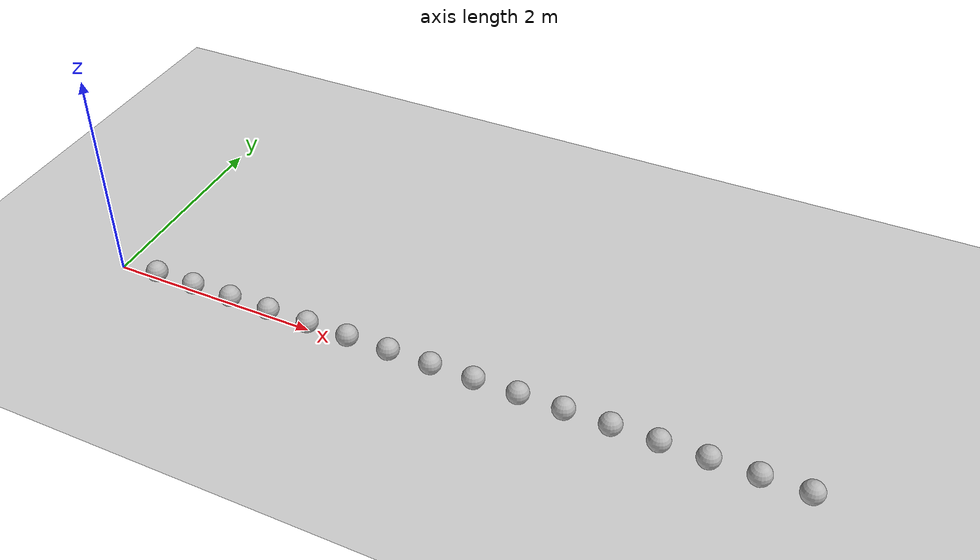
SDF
<?xml version="1.0" ?>

<sdf version="1.5">
  <world name="default">
    <gui>
      <camera name="user_camera">
        <pose>7.5 -3 1.5 0 0.27 2.35</pose>
      </camera>
    </gui>
    <include>
      <uri>model://ground_plane</uri>
    </include>
    <include>
      <uri>model://sun</uri>
    </include>

    <model name='sphere_1'>
      <allow_auto_disable>0</allow_auto_disable>
      <pose>0.4 0 0.1  0 0 0</pose>
      <link name="link">
        <pose>0 0 0 0 0 0</pose>
        <inertial>
          <pose>0 0 0 0 0 0</pose>
          <mass>11.309733552923259</mass>
          <inertia>
            <ixx>0.045238934211693047</ixx>
            <iyy>0.045238934211693047</iyy>
            <izz>0.045238934211693047</izz>
            <ixy>0.0</ixy>
            <ixz>0.0</ixz>
            <iyz>0.0</iyz>
          </inertia>
        </inertial>
        <sensor name='sphere_1_imu' type='imu'>
          <pose>0 0 0 0 0 0</pose>
          <always_on>1</always_on>
        </sensor>
        <collision name="collision">
          <pose>0 0 0 0 0 0</pose>
          <geometry>
            <sphere>
              <radius>0.1</radius>
            </sphere>
          </geometry>
          <surface>
            <contact>
              <ode>
                <kp>500000</kp>
              </ode>
            </contact>
          </surface>
        </collision>
        <visual name="visual">
          <pose>0 0 0 0 0 0</pose>
          <geometry>
            <sphere>
              <radius>0.1</radius>
            </sphere>
          </geometry>
          <material>
            <script>
              <uri>file://media/materials/scripts/gazebo.material</uri>
              <name>Gazebo/CoM</name>
            </script>
          </material>
        </visual>
      </link>
      <plugin name='sphere_1' filename='libInitialVelocityPlugin.so'>
        <linear>0 0 0</linear>
        <angular>0 0 6.283185307179586</angular>
      </plugin>
    </model>

    <model name='sphere_2'>
      <allow_auto_disable>0</allow_auto_disable>
      <pose>0.8 0 0.1  0 0 0</pose>
      <link name="link">
        <pose>-0.1 0 0 0 0 0</pose>
        <inertial>
          <pose>0.1 0 0 0 0 0</pose>
          <mass>11.309733552923259</mass>
          <inertia>
            <ixx>0.045238934211693047</ixx>
            <iyy>0.045238934211693047</iyy>
            <izz>0.045238934211693047</izz>
            <ixy>0.0</ixy>
            <ixz>0.0</ixz>
            <iyz>0.0</iyz>
          </inertia>
        </inertial>
        <sensor name='sphere_2_imu' type='imu'>
          <pose>0.1 0 0 0 0 0</pose>
          <always_on>1</always_on>
        </sensor>
        <collision name="collision">
          <pose>0.1 0 0 0 0 0</pose>
          <geometry>
            <sphere>
              <radius>0.1</radius>
            </sphere>
          </geometry>
          <surface>
            <contact>
              <ode>
                <kp>500000</kp>
              </ode>
            </contact>
          </surface>
        </collision>
        <visual name="visual">
          <pose>0.1 0 0 0 0 0</pose>
          <geometry>
            <sphere>
              <radius>0.1</radius>
            </sphere>
          </geometry>
          <material>
            <script>
              <uri>file://media/materials/scripts/gazebo.material</uri>
              <name>Gazebo/CoM</name>
            </script>
          </material>
        </visual>
      </link>
      <plugin name='sphere_2' filename='libInitialVelocityPlugin.so'>
        <linear>0 0 0</linear>
        <angular>0 0 6.283185307179586</angular>
      </plugin>
    </model>

    <model name='sphere_3'>
      <allow_auto_disable>0</allow_auto_disable>
      <pose>1.2000000000000002 0 0.1  0 0 0</pose>
      <link name="link">
        <pose>0 -0.1 0 0 0 0</pose>
        <inertial>
          <pose>0 0.1 0 0 0 0</pose>
          <mass>11.309733552923259</mass>
          <inertia>
            <ixx>0.045238934211693047</ixx>
            <iyy>0.045238934211693047</iyy>
            <izz>0.045238934211693047</izz>
            <ixy>0.0</ixy>
            <ixz>0.0</ixz>
            <iyz>0.0</iyz>
          </inertia>
        </inertial>
        <sensor name='sphere_3_imu' type='imu'>
          <pose>0 0.1 0 0 0 0</pose>
          <always_on>1</always_on>
        </sensor>
        <collision name="collision">
          <pose>0 0.1 0 0 0 0</pose>
          <geometry>
            <sphere>
              <radius>0.1</radius>
            </sphere>
          </geometry>
          <surface>
            <contact>
              <ode>
                <kp>500000</kp>
              </ode>
            </contact>
          </surface>
        </collision>
        <visual name="visual">
          <pose>0 0.1 0 0 0 0</pose>
          <geometry>
            <sphere>
              <radius>0.1</radius>
            </sphere>
          </geometry>
          <material>
            <script>
              <uri>file://media/materials/scripts/gazebo.material</uri>
              <name>Gazebo/CoM</name>
            </script>
          </material>
        </visual>
      </link>
      <plugin name='sphere_3' filename='libInitialVelocityPlugin.so'>
        <linear>0 0 0</linear>
        <angular>0 0 6.283185307179586</angular>
      </plugin>
    </model>

    <model name='sphere_4'>
      <allow_auto_disable>0</allow_auto_disable>
      <pose>1.6 0 0.1  0 0 0</pose>
      <link name="link">
        <pose>0 0 -0.1 0 0 0</pose>
        <inertial>
          <pose>0 0 0.1 0 0 0</pose>
          <mass>11.309733552923259</mass>
          <inertia>
            <ixx>0.045238934211693047</ixx>
            <iyy>0.045238934211693047</iyy>
            <izz>0.045238934211693047</izz>
            <ixy>0.0</ixy>
            <ixz>0.0</ixz>
            <iyz>0.0</iyz>
          </inertia>
        </inertial>
        <sensor name='sphere_4_imu' type='imu'>
          <pose>0 0 0.1 0 0 0</pose>
          <always_on>1</always_on>
        </sensor>
        <collision name="collision">
          <pose>0 0 0.1 0 0 0</pose>
          <geometry>
            <sphere>
              <radius>0.1</radius>
            </sphere>
          </geometry>
          <surface>
            <contact>
              <ode>
                <kp>500000</kp>
              </ode>
            </contact>
          </surface>
        </collision>
        <visual name="visual">
          <pose>0 0 0.1 0 0 0</pose>
          <geometry>
            <sphere>
              <radius>0.1</radius>
            </sphere>
          </geometry>
          <material>
            <script>
              <uri>file://media/materials/scripts/gazebo.material</uri>
              <name>Gazebo/CoM</name>
            </script>
          </material>
        </visual>
      </link>
      <plugin name='sphere_4' filename='libInitialVelocityPlugin.so'>
        <linear>0 0 0</linear>
        <angular>0 0 6.283185307179586</angular>
      </plugin>
    </model>

    <model name='sphere_5'>
      <allow_auto_disable>0</allow_auto_disable>
      <pose>2.0 0 0.1  0 0 0</pose>
      <link name="link">
        <pose>0.1 0 0 0 0 0</pose>
        <inertial>
          <pose>-0.1 0 0 0 0 0</pose>
          <mass>11.309733552923259</mass>
          <inertia>
            <ixx>0.045238934211693047</ixx>
            <iyy>0.045238934211693047</iyy>
            <izz>0.045238934211693047</izz>
            <ixy>0.0</ixy>
            <ixz>0.0</ixz>
            <iyz>0.0</iyz>
          </inertia>
        </inertial>
        <sensor name='sphere_5_imu' type='imu'>
          <pose>-0.1 0 0 0 0 0</pose>
          <always_on>1</always_on>
        </sensor>
        <collision name="collision">
          <pose>-0.1 0 0 0 0 0</pose>
          <geometry>
            <sphere>
              <radius>0.1</radius>
            </sphere>
          </geometry>
          <surface>
            <contact>
              <ode>
                <kp>500000</kp>
              </ode>
            </contact>
          </surface>
        </collision>
        <visual name="visual">
          <pose>-0.1 0 0 0 0 0</pose>
          <geometry>
            <sphere>
              <radius>0.1</radius>
            </sphere>
          </geometry>
          <material>
            <script>
              <uri>file://media/materials/scripts/gazebo.material</uri>
              <name>Gazebo/CoM</name>
            </script>
          </material>
        </visual>
      </link>
      <plugin name='sphere_5' filename='libInitialVelocityPlugin.so'>
        <linear>0 0 0</linear>
        <angular>0 0 6.283185307179586</angular>
      </plugin>
    </model>

    <model name='sphere_6'>
      <allow_auto_disable>0</allow_auto_disable>
      <pose>2.4000000000000004 0 0.1  0 0 0</pose>
      <link name="link">
        <pose>0 0.1 0 0 0 0</pose>
        <inertial>
          <pose>0 -0.1 0 0 0 0</pose>
          <mass>11.309733552923259</mass>
          <inertia>
            <ixx>0.045238934211693047</ixx>
            <iyy>0.045238934211693047</iyy>
            <izz>0.045238934211693047</izz>
            <ixy>0.0</ixy>
            <ixz>0.0</ixz>
            <iyz>0.0</iyz>
          </inertia>
        </inertial>
        <sensor name='sphere_6_imu' type='imu'>
          <pose>0 -0.1 0 0 0 0</pose>
          <always_on>1</always_on>
        </sensor>
        <collision name="collision">
          <pose>0 -0.1 0 0 0 0</pose>
          <geometry>
            <sphere>
              <radius>0.1</radius>
            </sphere>
          </geometry>
          <surface>
            <contact>
              <ode>
                <kp>500000</kp>
              </ode>
            </contact>
          </surface>
        </collision>
        <visual name="visual">
          <pose>0 -0.1 0 0 0 0</pose>
          <geometry>
            <sphere>
              <radius>0.1</radius>
            </sphere>
          </geometry>
          <material>
            <script>
              <uri>file://media/materials/scripts/gazebo.material</uri>
              <name>Gazebo/CoM</name>
            </script>
          </material>
        </visual>
      </link>
      <plugin name='sphere_6' filename='libInitialVelocityPlugin.so'>
        <linear>0 0 0</linear>
        <angular>0 0 6.283185307179586</angular>
      </plugin>
    </model>

    <model name='sphere_7'>
      <allow_auto_disable>0</allow_auto_disable>
      <pose>2.8000000000000003 0 0.1  0 0 0</pose>
      <link name="link">
        <pose>0 0 0.1 0 0 0</pose>
        <inertial>
          <pose>0 0 -0.1 0 0 0</pose>
          <mass>11.309733552923259</mass>
          <inertia>
            <ixx>0.045238934211693047</ixx>
            <iyy>0.045238934211693047</iyy>
            <izz>0.045238934211693047</izz>
            <ixy>0.0</ixy>
            <ixz>0.0</ixz>
            <iyz>0.0</iyz>
          </inertia>
        </inertial>
        <sensor name='sphere_7_imu' type='imu'>
          <pose>0 0 -0.1 0 0 0</pose>
          <always_on>1</always_on>
        </sensor>
        <collision name="collision">
          <pose>0 0 -0.1 0 0 0</pose>
          <geometry>
            <sphere>
              <radius>0.1</radius>
            </sphere>
          </geometry>
          <surface>
            <contact>
              <ode>
                <kp>500000</kp>
              </ode>
            </contact>
          </surface>
        </collision>
        <visual name="visual">
          <pose>0 0 -0.1 0 0 0</pose>
          <geometry>
            <sphere>
              <radius>0.1</radius>
            </sphere>
          </geometry>
          <material>
            <script>
              <uri>file://media/materials/scripts/gazebo.material</uri>
              <name>Gazebo/CoM</name>
            </script>
          </material>
        </visual>
      </link>
      <plugin name='sphere_7' filename='libInitialVelocityPlugin.so'>
        <linear>0 0 0</linear>
        <angular>0 0 6.283185307179586</angular>
      </plugin>
    </model>

    <model name='sphere_8'>
      <allow_auto_disable>0</allow_auto_disable>
      <pose>3.2 0 0.1  0 0 0</pose>
      <link name="link">
        <pose>0.1 0 0 1.5707963267948966 0 0</pose>
        <inertial>
          <pose>-0.1 0 0 -1.5707963267948966 0 0</pose>
          <mass>11.309733552923259</mass>
          <inertia>
            <ixx>0.045238934211693047</ixx>
            <iyy>0.045238934211693047</iyy>
            <izz>0.045238934211693047</izz>
            <ixy>0.0</ixy>
            <ixz>0.0</ixz>
            <iyz>0.0</iyz>
          </inertia>
        </inertial>
        <sensor name='sphere_8_imu' type='imu'>
          <pose>-0.1 0 0 -1.5707963267948966 0 0</pose>
          <always_on>1</always_on>
        </sensor>
        <collision name="collision">
          <pose>-0.1 0 0 -1.5707963267948966 0 0</pose>
          <geometry>
            <sphere>
              <radius>0.1</radius>
            </sphere>
          </geometry>
          <surface>
            <contact>
              <ode>
                <kp>500000</kp>
              </ode>
            </contact>
          </surface>
        </collision>
        <visual name="visual">
          <pose>-0.1 0 0 -1.5707963267948966 0 0</pose>
          <geometry>
            <sphere>
              <radius>0.1</radius>
            </sphere>
          </geometry>
          <material>
            <script>
              <uri>file://media/materials/scripts/gazebo.material</uri>
              <name>Gazebo/CoM</name>
            </script>
          </material>
        </visual>
      </link>
      <plugin name='sphere_8' filename='libInitialVelocityPlugin.so'>
        <linear>0 0 0</linear>
        <angular>0 0 6.283185307179586</angular>
      </plugin>
    </model>

    <model name='sphere_9'>
      <allow_auto_disable>0</allow_auto_disable>
      <pose>3.6 0 0.1  0 0 0</pose>
      <link name="link">
        <pose>0.1 0 0 0 1.5707963267948966 0</pose>
        <inertial>
          <pose>0 0 -0.1 0 -1.5707963267948966 0</pose>
          <mass>11.309733552923259</mass>
          <inertia>
            <ixx>0.045238934211693047</ixx>
            <iyy>0.045238934211693047</iyy>
            <izz>0.045238934211693047</izz>
            <ixy>0.0</ixy>
            <ixz>0.0</ixz>
            <iyz>0.0</iyz>
          </inertia>
        </inertial>
        <sensor name='sphere_9_imu' type='imu'>
          <pose>0 0 -0.1 0 -1.5707963267948966 0</pose>
          <always_on>1</always_on>
        </sensor>
        <collision name="collision">
          <pose>0 0 -0.1 0 -1.5707963267948966 0</pose>
          <geometry>
            <sphere>
              <radius>0.1</radius>
            </sphere>
          </geometry>
          <surface>
            <contact>
              <ode>
                <kp>500000</kp>
              </ode>
            </contact>
          </surface>
        </collision>
        <visual name="visual">
          <pose>0 0 -0.1 0 -1.5707963267948966 0</pose>
          <geometry>
            <sphere>
              <radius>0.1</radius>
            </sphere>
          </geometry>
          <material>
            <script>
              <uri>file://media/materials/scripts/gazebo.material</uri>
              <name>Gazebo/CoM</name>
            </script>
          </material>
        </visual>
      </link>
      <plugin name='sphere_9' filename='libInitialVelocityPlugin.so'>
        <linear>0 0 0</linear>
        <angular>0 0 6.283185307179586</angular>
      </plugin>
    </model>

    <model name='sphere_10'>
      <allow_auto_disable>0</allow_auto_disable>
      <pose>4.0 0 0.1  0 0 0</pose>
      <link name="link">
        <pose>0.1 0 0 0 0 1.5707963267948966</pose>
        <inertial>
          <pose>0 0.1 0 0 0 -1.5707963267948966</pose>
          <mass>11.309733552923259</mass>
          <inertia>
            <ixx>0.045238934211693047</ixx>
            <iyy>0.045238934211693047</iyy>
            <izz>0.045238934211693047</izz>
            <ixy>0.0</ixy>
            <ixz>0.0</ixz>
            <iyz>0.0</iyz>
          </inertia>
        </inertial>
        <sensor name='sphere_10_imu' type='imu'>
          <pose>0 0.1 0 0 0 -1.5707963267948966</pose>
          <always_on>1</always_on>
        </sensor>
        <collision name="collision">
          <pose>0 0.1 0 0 0 -1.5707963267948966</pose>
          <geometry>
            <sphere>
              <radius>0.1</radius>
            </sphere>
          </geometry>
          <surface>
            <contact>
              <ode>
                <kp>500000</kp>
              </ode>
            </contact>
          </surface>
        </collision>
        <visual name="visual">
          <pose>0 0.1 0 0 0 -1.5707963267948966</pose>
          <geometry>
            <sphere>
              <radius>0.1</radius>
            </sphere>
          </geometry>
          <material>
            <script>
              <uri>file://media/materials/scripts/gazebo.material</uri>
              <name>Gazebo/CoM</name>
            </script>
          </material>
        </visual>
      </link>
      <plugin name='sphere_10' filename='libInitialVelocityPlugin.so'>
        <linear>0 0 0</linear>
        <angular>0 0 6.283185307179586</angular>
      </plugin>
    </model>

    <model name='sphere_11'>
      <allow_auto_disable>0</allow_auto_disable>
      <pose>4.4 0 0.1  0 0 0</pose>
      <link name="link">
        <pose>0 0.1 0 1.5707963267948966 0 0</pose>
        <inertial>
          <pose>0 0 0.1 -1.5707963267948966 0 0</pose>
          <mass>11.309733552923259</mass>
          <inertia>
            <ixx>0.045238934211693047</ixx>
            <iyy>0.045238934211693047</iyy>
            <izz>0.045238934211693047</izz>
            <ixy>0.0</ixy>
            <ixz>0.0</ixz>
            <iyz>0.0</iyz>
          </inertia>
        </inertial>
        <sensor name='sphere_11_imu' type='imu'>
          <pose>0 0 0.1 -1.5707963267948966 0 0</pose>
          <always_on>1</always_on>
        </sensor>
        <collision name="collision">
          <pose>0 0 0.1 -1.5707963267948966 0 0</pose>
          <geometry>
            <sphere>
              <radius>0.1</radius>
            </sphere>
          </geometry>
          <surface>
            <contact>
              <ode>
                <kp>500000</kp>
              </ode>
            </contact>
          </surface>
        </collision>
        <visual name="visual">
          <pose>0 0 0.1 -1.5707963267948966 0 0</pose>
          <geometry>
            <sphere>
              <radius>0.1</radius>
            </sphere>
          </geometry>
          <material>
            <script>
              <uri>file://media/materials/scripts/gazebo.material</uri>
              <name>Gazebo/CoM</name>
            </script>
          </material>
        </visual>
      </link>
      <plugin name='sphere_11' filename='libInitialVelocityPlugin.so'>
        <linear>0 0 0</linear>
        <angular>0 0 6.283185307179586</angular>
      </plugin>
    </model>

    <model name='sphere_12'>
      <allow_auto_disable>0</allow_auto_disable>
      <pose>4.800000000000001 0 0.1  0 0 0</pose>
      <link name="link">
        <pose>0 0.1 0 0 1.5707963267948966 0</pose>
        <inertial>
          <pose>0 -0.1 0 0 -1.5707963267948966 0</pose>
          <mass>11.309733552923259</mass>
          <inertia>
            <ixx>0.045238934211693047</ixx>
            <iyy>0.045238934211693047</iyy>
            <izz>0.045238934211693047</izz>
            <ixy>0.0</ixy>
            <ixz>0.0</ixz>
            <iyz>0.0</iyz>
          </inertia>
        </inertial>
        <sensor name='sphere_12_imu' type='imu'>
          <pose>0 -0.1 0 0 -1.5707963267948966 0</pose>
          <always_on>1</always_on>
        </sensor>
        <collision name="collision">
          <pose>0 -0.1 0 0 -1.5707963267948966 0</pose>
          <geometry>
            <sphere>
              <radius>0.1</radius>
            </sphere>
          </geometry>
          <surface>
            <contact>
              <ode>
                <kp>500000</kp>
              </ode>
            </contact>
          </surface>
        </collision>
        <visual name="visual">
          <pose>0 -0.1 0 0 -1.5707963267948966 0</pose>
          <geometry>
            <sphere>
              <radius>0.1</radius>
            </sphere>
          </geometry>
          <material>
            <script>
              <uri>file://media/materials/scripts/gazebo.material</uri>
              <name>Gazebo/CoM</name>
            </script>
          </material>
        </visual>
      </link>
      <plugin name='sphere_12' filename='libInitialVelocityPlugin.so'>
        <linear>0 0 0</linear>
        <angular>0 0 6.283185307179586</angular>
      </plugin>
    </model>

    <model name='sphere_13'>
      <allow_auto_disable>0</allow_auto_disable>
      <pose>5.2 0 0.1  0 0 0</pose>
      <link name="link">
        <pose>0 0.1 0 0 0 1.5707963267948966</pose>
        <inertial>
          <pose>-0.1 0 0 0 0 -1.5707963267948966</pose>
          <mass>11.309733552923259</mass>
          <inertia>
            <ixx>0.045238934211693047</ixx>
            <iyy>0.045238934211693047</iyy>
            <izz>0.045238934211693047</izz>
            <ixy>0.0</ixy>
            <ixz>0.0</ixz>
            <iyz>0.0</iyz>
          </inertia>
        </inertial>
        <sensor name='sphere_13_imu' type='imu'>
          <pose>-0.1 0 0 0 0 -1.5707963267948966</pose>
          <always_on>1</always_on>
        </sensor>
        <collision name="collision">
          <pose>-0.1 0 0 0 0 -1.5707963267948966</pose>
          <geometry>
            <sphere>
              <radius>0.1</radius>
            </sphere>
          </geometry>
          <surface>
            <contact>
              <ode>
                <kp>500000</kp>
              </ode>
            </contact>
          </surface>
        </collision>
        <visual name="visual">
          <pose>-0.1 0 0 0 0 -1.5707963267948966</pose>
          <geometry>
            <sphere>
              <radius>0.1</radius>
            </sphere>
          </geometry>
          <material>
            <script>
              <uri>file://media/materials/scripts/gazebo.material</uri>
              <name>Gazebo/CoM</name>
            </script>
          </material>
        </visual>
      </link>
      <plugin name='sphere_13' filename='libInitialVelocityPlugin.so'>
        <linear>0 0 0</linear>
        <angular>0 0 6.283185307179586</angular>
      </plugin>
    </model>

    <model name='sphere_14'>
      <allow_auto_disable>0</allow_auto_disable>
      <pose>5.6000000000000005 0 0.1  0 0 0</pose>
      <link name="link">
        <pose>0 0 0.1 1.5707963267948966 0 0</pose>
        <inertial>
          <pose>0 -0.1 0 -1.5707963267948966 0 0</pose>
          <mass>11.309733552923259</mass>
          <inertia>
            <ixx>0.045238934211693047</ixx>
            <iyy>0.045238934211693047</iyy>
            <izz>0.045238934211693047</izz>
            <ixy>0.0</ixy>
            <ixz>0.0</ixz>
            <iyz>0.0</iyz>
          </inertia>
        </inertial>
        <sensor name='sphere_14_imu' type='imu'>
          <pose>0 -0.1 0 -1.5707963267948966 0 0</pose>
          <always_on>1</always_on>
        </sensor>
        <collision name="collision">
          <pose>0 -0.1 0 -1.5707963267948966 0 0</pose>
          <geometry>
            <sphere>
              <radius>0.1</radius>
            </sphere>
          </geometry>
          <surface>
            <contact>
              <ode>
                <kp>500000</kp>
              </ode>
            </contact>
          </surface>
        </collision>
        <visual name="visual">
          <pose>0 -0.1 0 -1.5707963267948966 0 0</pose>
          <geometry>
            <sphere>
              <radius>0.1</radius>
            </sphere>
          </geometry>
          <material>
            <script>
              <uri>file://media/materials/scripts/gazebo.material</uri>
              <name>Gazebo/CoM</name>
            </script>
          </material>
        </visual>
      </link>
      <plugin name='sphere_14' filename='libInitialVelocityPlugin.so'>
        <linear>0 0 0</linear>
        <angular>0 0 6.283185307179586</angular>
      </plugin>
    </model>

    <model name='sphere_15'>
      <allow_auto_disable>0</allow_auto_disable>
      <pose>6.0 0 0.1  0 0 0</pose>
      <link name="link">
        <pose>0 0 0.1 0 1.5707963267948966 0</pose>
        <inertial>
          <pose>0.1 0 0 0 -1.5707963267948966 0</pose>
          <mass>11.309733552923259</mass>
          <inertia>
            <ixx>0.045238934211693047</ixx>
            <iyy>0.045238934211693047</iyy>
            <izz>0.045238934211693047</izz>
            <ixy>0.0</ixy>
            <ixz>0.0</ixz>
            <iyz>0.0</iyz>
          </inertia>
        </inertial>
        <sensor name='sphere_15_imu' type='imu'>
          <pose>0.1 0 0 0 -1.5707963267948966 0</pose>
          <always_on>1</always_on>
        </sensor>
        <collision name="collision">
          <pose>0.1 0 0 0 -1.5707963267948966 0</pose>
          <geometry>
            <sphere>
              <radius>0.1</radius>
            </sphere>
          </geometry>
          <surface>
            <contact>
              <ode>
                <kp>500000</kp>
              </ode>
            </contact>
          </surface>
        </collision>
        <visual name="visual">
          <pose>0.1 0 0 0 -1.5707963267948966 0</pose>
          <geometry>
            <sphere>
              <radius>0.1</radius>
            </sphere>
          </geometry>
          <material>
            <script>
              <uri>file://media/materials/scripts/gazebo.material</uri>
              <name>Gazebo/CoM</name>
            </script>
          </material>
        </visual>
      </link>
      <plugin name='sphere_15' filename='libInitialVelocityPlugin.so'>
        <linear>0 0 0</linear>
        <angular>0 0 6.283185307179586</angular>
      </plugin>
    </model>

    <model name='sphere_16'>
      <allow_auto_disable>0</allow_auto_disable>
      <pose>6.4 0 0.1  0 0 0</pose>
      <link name="link">
        <pose>0 0 0.1 0 0 1.5707963267948966</pose>
        <inertial>
          <pose>0 0 -0.1 0 0 -1.5707963267948966</pose>
          <mass>11.309733552923259</mass>
          <inertia>
            <ixx>0.045238934211693047</ixx>
            <iyy>0.045238934211693047</iyy>
            <izz>0.045238934211693047</izz>
            <ixy>0.0</ixy>
            <ixz>0.0</ixz>
            <iyz>0.0</iyz>
          </inertia>
        </inertial>
        <sensor name='sphere_16_imu' type='imu'>
          <pose>0 0 -0.1 0 0 -1.5707963267948966</pose>
          <always_on>1</always_on>
        </sensor>
        <collision name="collision">
          <pose>0 0 -0.1 0 0 -1.5707963267948966</pose>
          <geometry>
            <sphere>
              <radius>0.1</radius>
            </sphere>
          </geometry>
          <surface>
            <contact>
              <ode>
                <kp>500000</kp>
              </ode>
            </contact>
          </surface>
        </collision>
        <visual name="visual">
          <pose>0 0 -0.1 0 0 -1.5707963267948966</pose>
          <geometry>
            <sphere>
              <radius>0.1</radius>
            </sphere>
          </geometry>
          <material>
            <script>
              <uri>file://media/materials/scripts/gazebo.material</uri>
              <name>Gazebo/CoM</name>
            </script>
          </material>
        </visual>
      </link>
      <plugin name='sphere_16' filename='libInitialVelocityPlugin.so'>
        <linear>0 0 0</linear>
        <angular>0 0 6.283185307179586</angular>
      </plugin>
    </model>

  </world>
</sdf>
